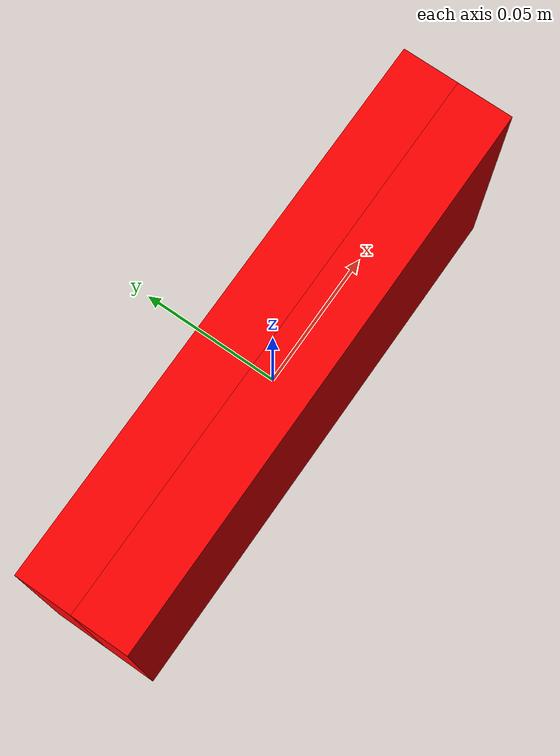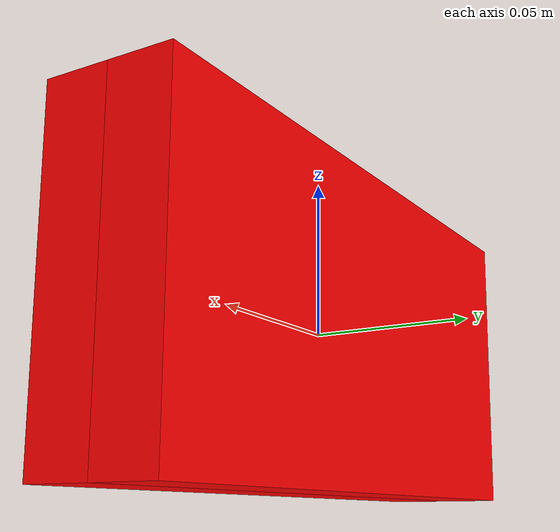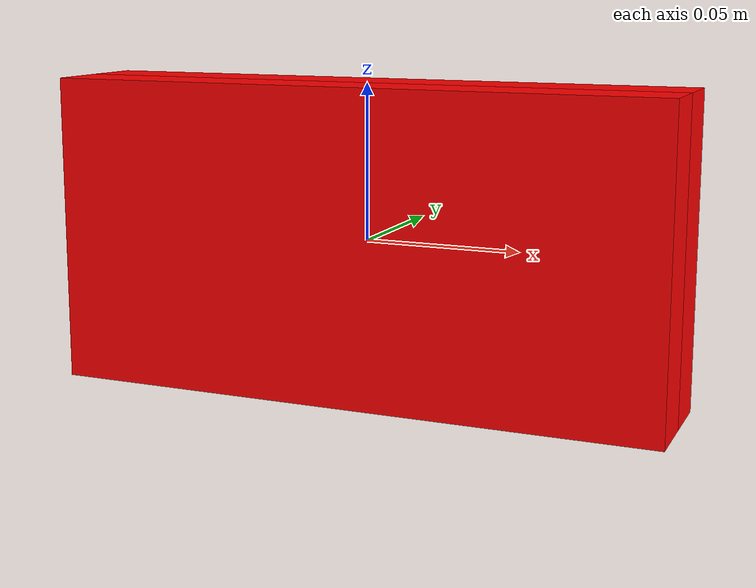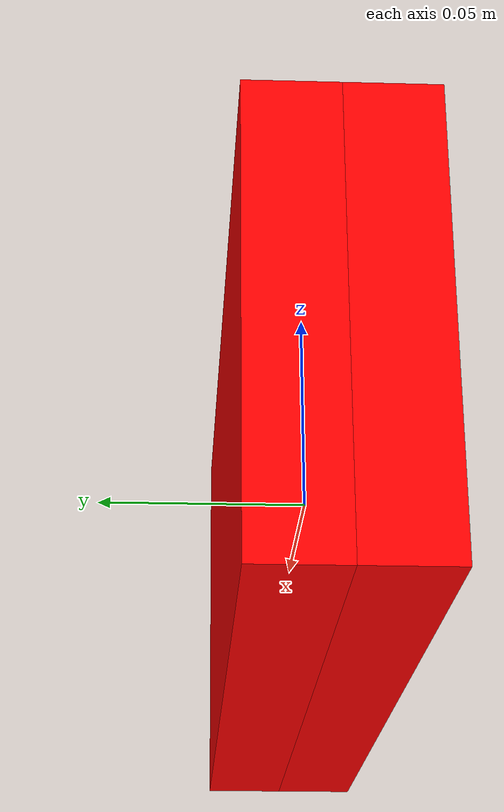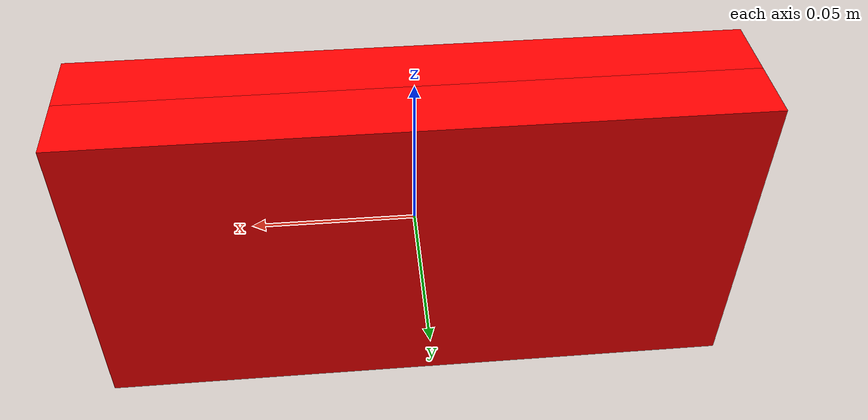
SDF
<?xml version="1.0"?>
<sdf version="1.7">
  <model name="gripper">
    <link name="gripper_body">
      <pose>0 0 0 0 0 0</pose>
      <inertial>
        <mass>1</mass>
        <inertia>
          <ixx>0.1</ixx>
          <ixy>0</ixy>
          <ixz>0</ixz>
          <iyy>0.1</iyy>
          <iyz>0</iyz>
          <izz>0.1</izz>
        </inertia>
      </inertial>
    </link>

    <joint name="y_slider_left" type="prismatic">
      <parent>gripper_body</parent>
      <child>left_finger</child>
      <axis>
        <xyz>0 1 0</xyz>
      </axis>
    </joint>

    <joint name="y_slider_right" type="prismatic">
      <parent>gripper_body</parent>
      <child>right_finger</child>
      <axis>
        <xyz>0 1 0</xyz>
      </axis>
    </joint>

    <joint name="z_slider" type="prismatic">
      <parent>world</parent>
      <child>gripper_body</child>
      <axis>
        <xyz>0 0 1</xyz>
      </axis>
    </joint>

    <!-- The model for a solid box of uniform density. -->
    <link name="left_finger">
      <pose>0 -0.01 0 0 0 0</pose>
      <inertial>
        <mass>1.0</mass>
        <inertia>
          <ixx>0.166666666666667</ixx>
          <ixy>0</ixy>
          <ixz>0</ixz>
          <iyy>0.166666666666667</iyy>
          <iyz>0</iyz>
          <izz>0.166666666666667</izz>
        </inertia>
      </inertial>
      <visual name="visual">
        <geometry>
          <box>
            <size>0.2 0.02 0.1</size>
          </box>
        </geometry>
        <material>
          <diffuse>1 0 0 1</diffuse>
        </material>
      </visual>
      <collision name="collision_left">
        <geometry>
          <box>
            <size>0.2 0.02 0.1</size>
          </box>
        </geometry>
        <surface>
          <friction>
            <ode>
              <mu>1.0</mu>
              <mu2>1.0</mu2>
            </ode>
          </friction>
        </surface>
      </collision>
    </link>

      <!-- The model for a solid box of uniform density. -->
    <link name="right_finger">
      <pose>0 0.01 0 0 0 0</pose>
      <inertial>
        <mass>1.0</mass>
        <inertia>
          <ixx>0.166666666666667</ixx>
          <ixy>0</ixy>
          <ixz>0</ixz>
          <iyy>0.166666666666667</iyy>
          <iyz>0</iyz>
          <izz>0.166666666666667</izz>
        </inertia>
      </inertial>
      <visual name="visual">
        <geometry>
          <box>
            <size>0.2 0.02 0.1</size>
          </box>
        </geometry>
        <material>
          <diffuse>1 0 0 1</diffuse>
        </material>
      </visual>
      <collision name="collision_right">
        <geometry>
          <box>
            <size>0.2 0.02 0.1</size>
          </box>
        </geometry>
        <surface>
          <friction>
            <ode>
              <mu>1.0</mu>
              <mu2>1.0</mu2>
            </ode>
          </friction>
        </surface>
      </collision>
    </link>
  </model>
</sdf>
